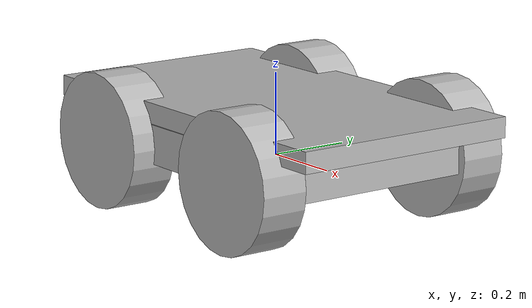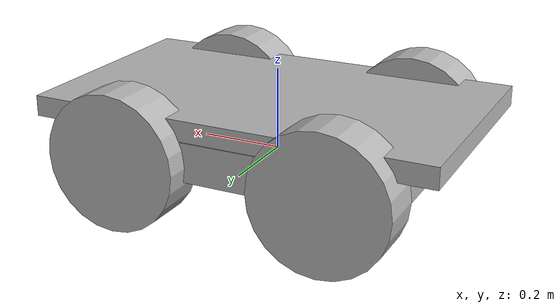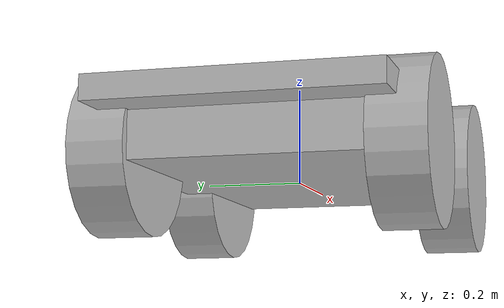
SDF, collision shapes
<?xml version='1.0' encoding='utf-8'?>
<sdf version="1.8">
    <model name="forest_ugv">
        <link name="base_link">
            <pose>0 0 0 0 0 0</pose>
            <inertial>
                <pose>-0.000543 -0.084945 0.062329 0 0 0</pose>
                <mass>46.064</mass>
                <inertia>
                    <ixx>0.615397</ixx>
                    <ixy>-0.0240585</ixy>
                    <ixz>-0.120749</ixz>
                    <iyy>1.75388</iyy>
                    <iyz>-0.0028322</iyz>
                    <izz>2.03641</izz>
                </inertia>
            </inertial>
            <collision name="base_link_collision">
                <pose>0 0 0.12 0 0 0</pose>
                <geometry>
                    <box><size>0.9874 0.5709 0.05</size></box>
                </geometry>
            </collision>
            <collision name="base_link_collision_bottom">
                <pose>0 0 0.046 0 0 0</pose>
                <geometry>
                    <box><size>0.80 0.5709 0.095</size></box>
                </geometry>
            </collision>

            <!-- Exact MARBLE Husky High-Fidelity Meshes -->
            <visual name="base_link_visual">
                <geometry>
                    <mesh><uri>model://marble_husky_sensor_config_1/meshes/base_link.dae</uri></mesh>
                </geometry>
            </visual>
            <visual name="top_chassis_visual">
                <geometry>
                    <mesh><uri>model://marble_husky_sensor_config_1/meshes/top_chassis.dae</uri></mesh>
                </geometry>
            </visual>
            <visual name="top_plate_visual">
                <geometry>
                    <mesh><uri>model://marble_husky_sensor_config_1/meshes/top_plate.dae</uri></mesh>
                </geometry>
            </visual>
            <visual name="bumper_front_visual">
                <geometry>
                    <mesh><uri>model://marble_husky_sensor_config_1/meshes/bumper.dae</uri></mesh>
                </geometry>
            </visual>
            <visual name="user_rail_visual">
                <geometry>
                    <mesh><uri>model://marble_husky_sensor_config_1/meshes/user_rail.dae</uri></mesh>
                </geometry>
            </visual>
            <visual name="realsense_camera_visual">
                <pose>0.468 0 0.285 0 0 0</pose>
                <geometry>
                    <mesh><uri>model://marble_husky_sensor_config_1/meshes/realsense.dae</uri></mesh>
                </geometry>
            </visual>
            <visual name="vlp16_base_visual">
                <pose>0.424 0 0.327 0 0 0</pose>
                <geometry>
                    <mesh><uri>model://marble_husky_sensor_config_1/meshes/VLP16_base_1.dae</uri></mesh>
                </geometry>
            </visual>
            <visual name="vlp16_scan_visual">
                <pose>0.424 0 0.327 0 0 0</pose>
                <geometry>
                    <mesh><uri>model://marble_husky_sensor_config_1/meshes/VLP16_scan.dae</uri></mesh>
                </geometry>
            </visual>

            <!-- Front RealSense Camera Sensor (Sony IMX / RealSense RGB) -->
            <sensor name="camera_front" type="camera">
                <topic>/camera/image_raw</topic>
                <camera_info_topic>/camera/camera_info</camera_info_topic>
                <camera name="camera_front">
                    <horizontal_fov>1.5184</horizontal_fov>
                    <image>
                        <width>640</width>
                        <height>480</height>
                        <format>R8G8B8</format>
                    </image>
                    <clip>
                        <near>0.05</near>
                        <far>300</far>
                    </clip>
                </camera>
                <always_on>1</always_on>
                <update_rate>30</update_rate>
                <visualize>1</visualize>
                <pose>0.468 0 0.285 0 0 0</pose>
            </sensor>

            <!-- IMU Sensor -->
            <sensor name="imu_sensor" type="imu">
                <topic>/imu/data</topic>
                <always_on>1</always_on>
                <update_rate>50</update_rate>
                <pose>0 0 0 0 0 0</pose>
            </sensor>
        </link>

        <!-- ==================== 4WD HUSKY WHEELS WITH DAE MESHES ==================== -->
        <!-- Front Left Wheel -->
        <link name="front_left_wheel_link">
            <pose>0.256 0.2854 0.03282 0 0 0</pose>
            <inertial>
                <mass>2.637</mass>
                <inertia>
                    <ixx>0.02467</ixx><ixy>0</ixy><ixz>0</ixz>
                    <iyy>0.04411</iyy><iyz>0</iyz><izz>0.02467</izz>
                </inertia>
            </inertial>
            <collision name="col">
                <pose>0 0 0 1.5708 0 0</pose>
                <geometry><cylinder><radius>0.1651</radius><length>0.1143</length></cylinder></geometry>
                <surface><friction><ode><mu>1.0</mu><mu2>0.02</mu2></ode></friction></surface>
            </collision>
            <visual name="vis">
                <geometry>
                    <mesh><uri>model://marble_husky_sensor_config_1/meshes/wheel.dae</uri></mesh>
                </geometry>
            </visual>
        </link>
        <joint name="front_left_wheel_joint" type="revolute">
            <child>front_left_wheel_link</child>
            <parent>base_link</parent>
            <axis><xyz>0 1 0</xyz><limit><lower>-1e16</lower><upper>1e16</upper></limit></axis>
        </joint>

        <!-- Front Right Wheel -->
        <link name="front_right_wheel_link">
            <pose>0.256 -0.2854 0.03282 0 0 0</pose>
            <inertial>
                <mass>2.637</mass>
                <inertia>
                    <ixx>0.02467</ixx><ixy>0</ixy><ixz>0</ixz>
                    <iyy>0.04411</iyy><iyz>0</iyz><izz>0.02467</izz>
                </inertia>
            </inertial>
            <collision name="col">
                <pose>0 0 0 1.5708 0 0</pose>
                <geometry><cylinder><radius>0.1651</radius><length>0.1143</length></cylinder></geometry>
                <surface><friction><ode><mu>1.0</mu><mu2>0.02</mu2></ode></friction></surface>
            </collision>
            <visual name="vis">
                <geometry>
                    <mesh><uri>model://marble_husky_sensor_config_1/meshes/wheel.dae</uri></mesh>
                </geometry>
            </visual>
        </link>
        <joint name="front_right_wheel_joint" type="revolute">
            <child>front_right_wheel_link</child>
            <parent>base_link</parent>
            <axis><xyz>0 1 0</xyz><limit><lower>-1e16</lower><upper>1e16</upper></limit></axis>
        </joint>

        <!-- Rear Left Wheel -->
        <link name="rear_left_wheel_link">
            <pose>-0.256 0.2854 0.03282 0 0 0</pose>
            <inertial>
                <mass>2.637</mass>
                <inertia>
                    <ixx>0.02467</ixx><ixy>0</ixy><ixz>0</ixz>
                    <iyy>0.04411</iyy><iyz>0</iyz><izz>0.02467</izz>
                </inertia>
            </inertial>
            <collision name="col">
                <pose>0 0 0 1.5708 0 0</pose>
                <geometry><cylinder><radius>0.1651</radius><length>0.1143</length></cylinder></geometry>
                <surface><friction><ode><mu>1.0</mu><mu2>0.02</mu2></ode></friction></surface>
            </collision>
            <visual name="vis">
                <geometry>
                    <mesh><uri>model://marble_husky_sensor_config_1/meshes/wheel.dae</uri></mesh>
                </geometry>
            </visual>
        </link>
        <joint name="rear_left_wheel_joint" type="revolute">
            <child>rear_left_wheel_link</child>
            <parent>base_link</parent>
            <axis><xyz>0 1 0</xyz><limit><lower>-1e16</lower><upper>1e16</upper></limit></axis>
        </joint>

        <!-- Rear Right Wheel -->
        <link name="rear_right_wheel_link">
            <pose>-0.256 -0.2854 0.03282 0 0 0</pose>
            <inertial>
                <mass>2.637</mass>
                <inertia>
                    <ixx>0.02467</ixx><ixy>0</ixy><ixz>0</ixz>
                    <iyy>0.04411</iyy><iyz>0</iyz><izz>0.02467</izz>
                </inertia>
            </inertial>
            <collision name="col">
                <pose>0 0 0 1.5708 0 0</pose>
                <geometry><cylinder><radius>0.1651</radius><length>0.1143</length></cylinder></geometry>
                <surface><friction><ode><mu>1.0</mu><mu2>0.02</mu2></ode></friction></surface>
            </collision>
            <visual name="vis">
                <geometry>
                    <mesh><uri>model://marble_husky_sensor_config_1/meshes/wheel.dae</uri></mesh>
                </geometry>
            </visual>
        </link>
        <joint name="rear_right_wheel_joint" type="revolute">
            <child>rear_right_wheel_link</child>
            <parent>base_link</parent>
            <axis><xyz>0 1 0</xyz><limit><lower>-1e16</lower><upper>1e16</upper></limit></axis>
        </joint>

        <!-- ==================== PLUGINS ==================== -->
        <!-- 4WD Differential Drive System -->
        <plugin filename="gz-sim-diff-drive-system" name="gz::sim::systems::DiffDrive">
            <left_joint>front_left_wheel_joint</left_joint>
            <left_joint>rear_left_wheel_joint</left_joint>
            <right_joint>front_right_wheel_joint</right_joint>
            <right_joint>rear_right_wheel_joint</right_joint>
            <wheel_separation>0.5709</wheel_separation>
            <wheel_radius>0.1651</wheel_radius>
            <max_linear_acceleration>2.5</max_linear_acceleration>
            <min_linear_acceleration>-2.5</min_linear_acceleration>
            <max_angular_acceleration>3.2</max_angular_acceleration>
            <min_angular_acceleration>-3.2</min_angular_acceleration>
            <max_linear_velocity>1.5</max_linear_velocity>
            <min_linear_velocity>-1.5</min_linear_velocity>
            <max_angular_velocity>2.0</max_angular_velocity>
            <min_angular_velocity>-2.0</min_angular_velocity>
            <topic>/cmd_vel</topic>
            <odom_topic>/odom</odom_topic>
            <tf_topic>/tf</tf_topic>
            <frame_id>odom</frame_id>
            <child_frame_id>base_footprint</child_frame_id>
            <odom_publish_frequency>50</odom_publish_frequency>
        </plugin>

        <!-- Joint State Publisher -->
        <plugin filename="gz-sim-joint-state-publisher-system" name="gz::sim::systems::JointStatePublisher">
            <joint_name>front_left_wheel_joint</joint_name>
            <joint_name>front_right_wheel_joint</joint_name>
            <joint_name>rear_left_wheel_joint</joint_name>
            <joint_name>rear_right_wheel_joint</joint_name>
        </plugin>

        <static>0</static>
    </model>
</sdf>
